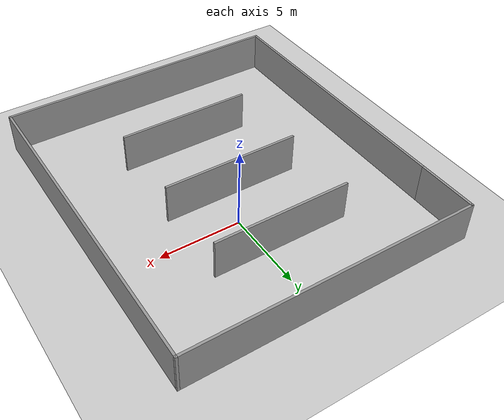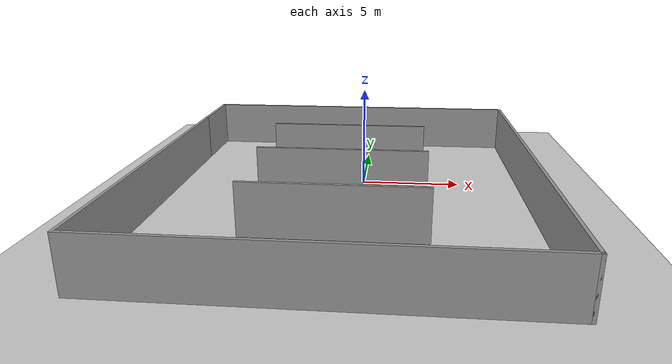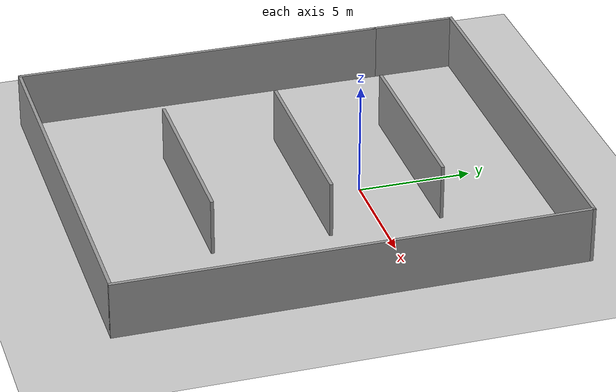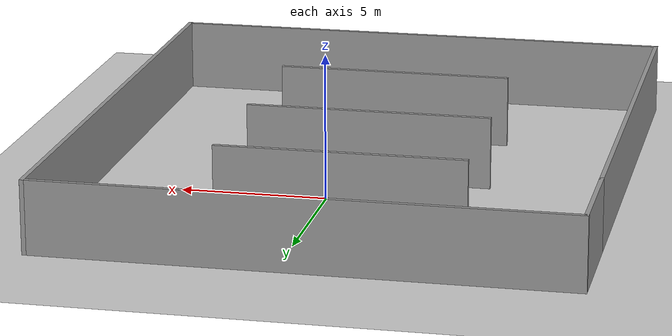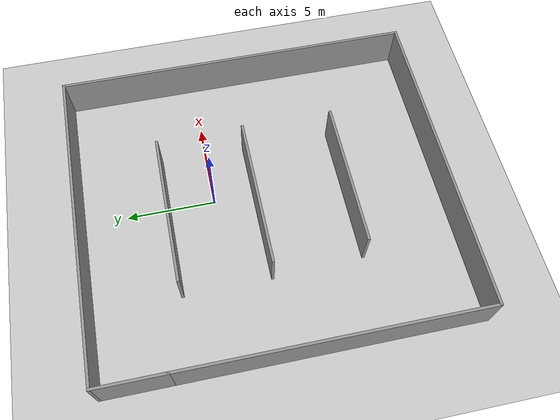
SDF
<sdf version="1.7">
 <world name="default">
  <light name="sun" type="directional">
   <pose>0 0 10 0 -0 0</pose>
   <diffuse>0.8 0.8 0.8 1</diffuse>
   <specular>0.2 0.2 0.2 1</specular>
   <attenuation>
    <range>1000</range>
    <constant>0.9</constant>
    <linear>0.01</linear>
    <quadratic>0.001</quadratic>
   </attenuation>
   <direction>-0.5 0.1 -0.9</direction>
   <spot><inner_angle>0</inner_angle><outer_angle>0</outer_angle><falloff>0</falloff></spot>
  </light>
  <model name="ground_plane">
   <static>1</static>
   <link name="link">
    <collision name="collision">
     <geometry><plane><normal>0 0 1</normal><size>100 100</size></plane></geometry>
     <surface><friction><ode><mu>100</mu><mu2>50</mu2></ode></friction></surface>
    </collision>
    <visual name="visual">
     <cast_shadows>0</cast_shadows>
     <geometry><plane><normal>0 0 1</normal><size>100 100</size></plane></geometry>
     <material>
      <script><uri>file://media/materials/scripts/gazebo.material</uri><name>Gazebo/Grey</name></script>
     </material>
    </visual>
   </link>
  </model>
  <gravity>0 0 -9.8</gravity>
  <magnetic_field>6e-06 2.3e-05 -4.2e-05</magnetic_field>
  <atmosphere type="adiabatic"/>
  <physics type="ode">
   <max_step_size>0.001</max_step_size>
   <real_time_factor>1</real_time_factor>
   <real_time_update_rate>1000</real_time_update_rate>
  </physics>
  <scene><ambient>0.4 0.4 0.4 1</ambient><background>0.7 0.7 0.7 1</background><shadows>1</shadows></scene>
  <audio><device>default</device></audio>
  <spherical_coordinates>
   <surface_model>EARTH_WGS84</surface_model>
   <latitude_deg>0</latitude_deg>
   <longitude_deg>0</longitude_deg>
   <elevation>0</elevation>
   <heading_deg>0</heading_deg>
  </spherical_coordinates>
  <model name="big_supermarket">
   <pose>-0.792054 -2.68707 0 0 -0 0</pose>
   <link name="Wall_0">
    <collision name="Wall_0_Collision">
     <geometry><box><size>16.75 0.15 2.5</size></box></geometry>
     <pose>0 0 1.25 0 -0 0</pose>
    </collision>
    <visual name="Wall_0_Visual">
     <pose>0 0 1.25 0 -0 0</pose>
     <geometry><box><size>16.75 0.15 2.5</size></box></geometry>
     <material>
      <script><uri>file://media/materials/scripts/gazebo.material</uri><name>Gazebo/Grey</name></script>
      <ambient>1 1 1 1</ambient>
     </material>
     <meta><layer>0</layer></meta>
    </visual>
    <pose>-8.925 -1.875 0 0 -0 -1.5708</pose>
   </link>
   <link name="Wall_1">
    <collision name="Wall_1_Collision">
     <geometry><box><size>18 0.15 2.5</size></box></geometry>
     <pose>0 0 1.25 0 -0 0</pose>
    </collision>
    <visual name="Wall_1_Visual">
     <pose>0 0 1.25 0 -0 0</pose>
     <geometry><box><size>18 0.15 2.5</size></box></geometry>
     <material>
      <script><uri>file://media/materials/scripts/gazebo.material</uri><name>Gazebo/Grey</name></script>
      <ambient>1 1 1 1</ambient>
     </material>
     <meta><layer>0</layer></meta>
    </visual>
    <pose>0 -10.175 0 0 -0 0</pose>
   </link>
   <link name="Wall_10">
    <collision name="Wall_10_Collision">
     <geometry><box><size>8.25 0.15 2.5</size></box></geometry>
     <pose>0 0 1.25 0 -0 0</pose>
    </collision>
    <visual name="Wall_10_Visual">
     <pose>0 0 1.25 0 -0 0</pose>
     <geometry><box><size>8.25 0.15 2.5</size></box></geometry>
     <material>
      <script><uri>file://media/materials/scripts/gazebo.material</uri><name>Gazebo/Grey</name></script>
      <ambient>1 1 1 1</ambient>
     </material>
     <meta><layer>0</layer></meta>
    </visual>
    <pose>-0.102011 -4.73345 0 0 -0 0</pose>
   </link>
   <link name="Wall_2">
    <collision name="Wall_2_Collision">
     <geometry><box><size>20.5 0.15 2.5</size></box></geometry>
     <pose>0 0 1.25 0 -0 0</pose>
    </collision>
    <visual name="Wall_2_Visual">
     <pose>0 0 1.25 0 -0 0</pose>
     <geometry><box><size>20.5 0.15 2.5</size></box></geometry>
     <material>
      <script><uri>file://media/materials/scripts/gazebo.material</uri><name>Gazebo/Grey</name></script>
      <ambient>1 1 1 1</ambient>
     </material>
     <meta><layer>0</layer></meta>
    </visual>
    <pose>8.925 0 0 0 -0 1.5708</pose>
   </link>
   <link name="Wall_3">
    <collision name="Wall_3_Collision">
     <geometry><box><size>18 0.15 2.5</size></box></geometry>
     <pose>0 0 1.25 0 -0 0</pose>
    </collision>
    <visual name="Wall_3_Visual">
     <pose>0 0 1.25 0 -0 0</pose>
     <geometry><box><size>18 0.15 2.5</size></box></geometry>
     <material>
      <script><uri>file://media/materials/scripts/gazebo.material</uri><name>Gazebo/Grey</name></script>
      <ambient>1 1 1 1</ambient>
     </material>
     <meta><layer>0</layer></meta>
    </visual>
    <pose>0 10.175 0 0 -0 3.14159</pose>
   </link>
   <link name="Wall_4">
    <collision name="Wall_4_Collision">
     <geometry><box><size>3.9 0.15 2.5</size></box></geometry>
     <pose>0 0 1.25 0 -0 0</pose>
    </collision>
    <visual name="Wall_4_Visual">
     <pose>0 0 1.25 0 -0 0</pose>
     <geometry><box><size>3.9 0.15 2.5</size></box></geometry>
     <material>
      <script><uri>file://media/materials/scripts/gazebo.material</uri><name>Gazebo/Grey</name></script>
      <ambient>1 1 1 1</ambient>
     </material>
     <meta><layer>0</layer></meta>
    </visual>
    <pose>-8.925 8.3 0 0 -0 -1.5708</pose>
   </link>
   <link name="Wall_6">
    <collision name="Wall_6_Collision">
     <geometry><box><size>8.5 0.15 2.5</size></box></geometry>
     <pose>0 0 1.25 0 -0 0</pose>
    </collision>
    <visual name="Wall_6_Visual">
     <pose>0 0 1.25 0 -0 0</pose>
     <geometry><box><size>8.5 0.15 2.5</size></box></geometry>
     <material>
      <script><uri>file://media/materials/scripts/gazebo.material</uri><name>Gazebo/Grey</name></script>
      <ambient>1 1 1 1</ambient>
     </material>
     <meta><layer>0</layer></meta>
    </visual>
    <pose>-0.191021 0.402791 0 0 -0 0</pose>
   </link>
   <link name="Wall_8">
    <collision name="Wall_8_Collision">
     <geometry><box><size>8.5 0.15 2.5</size></box></geometry>
     <pose>0 0 1.25 0 -0 0</pose>
    </collision>
    <visual name="Wall_8_Visual">
     <pose>0 0 1.25 0 -0 0</pose>
     <geometry><box><size>8.5 0.15 2.5</size></box></geometry>
     <material>
      <script><uri>file://media/materials/scripts/gazebo.material</uri><name>Gazebo/Grey</name></script>
      <ambient>1 1 1 1</ambient>
     </material>
     <meta><layer>0</layer></meta>
    </visual>
    <pose>-0.244524 5.32502 0 0 -0 0</pose>
   </link>
   <static>1</static>
  </model>
 </world>
</sdf>
